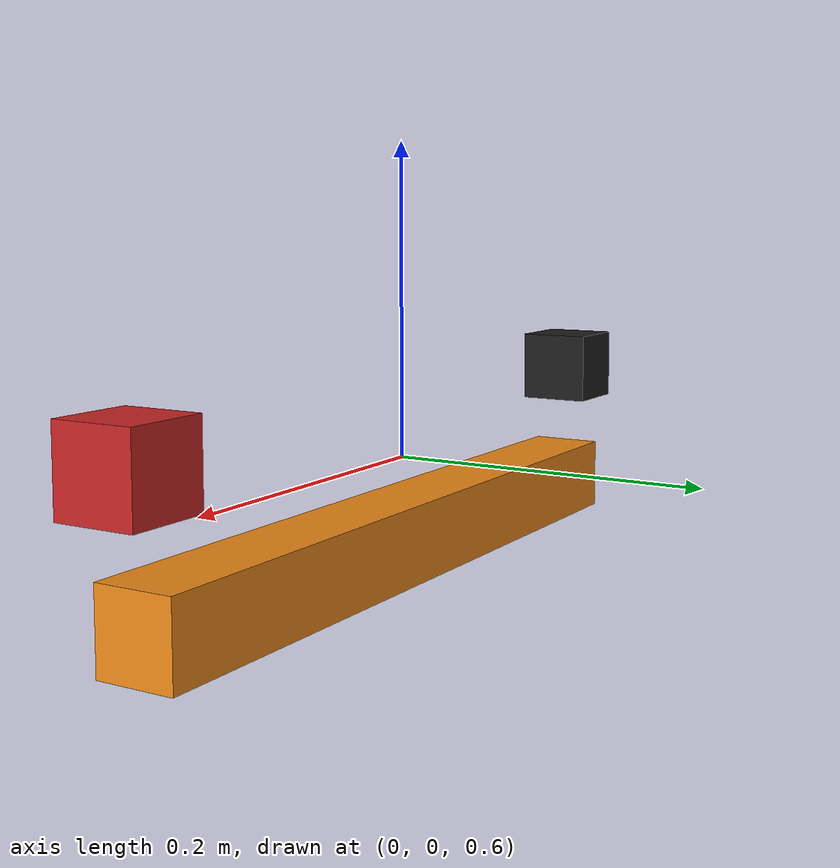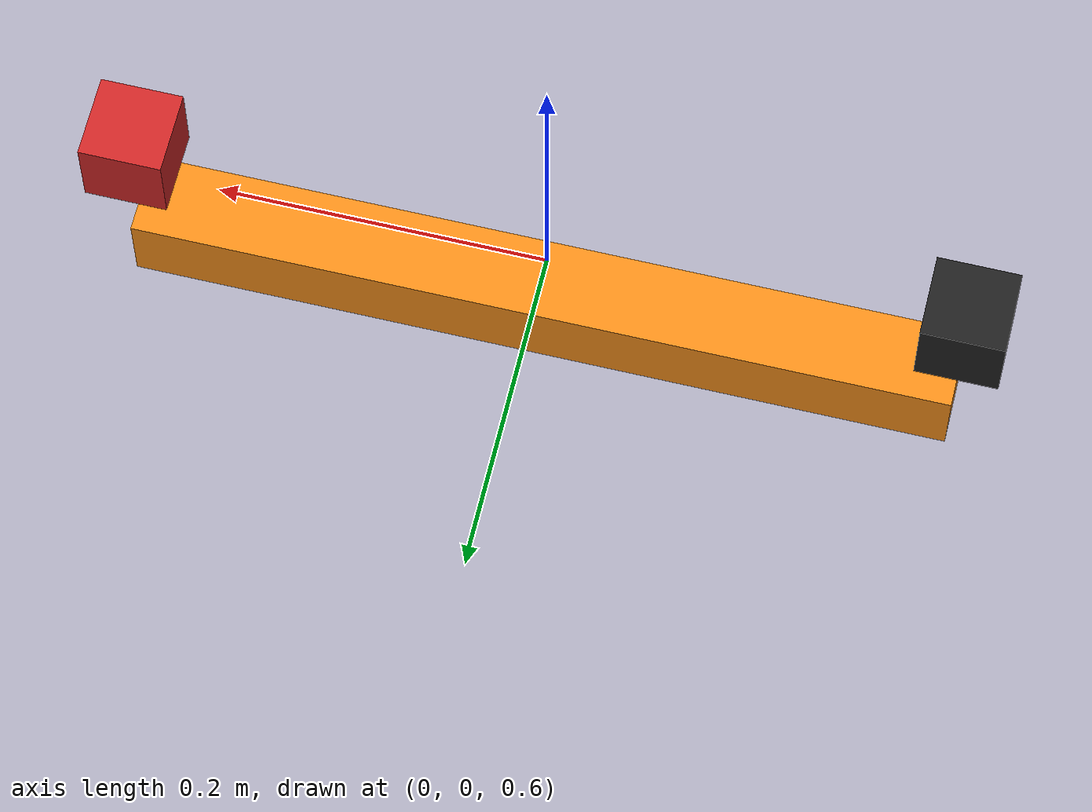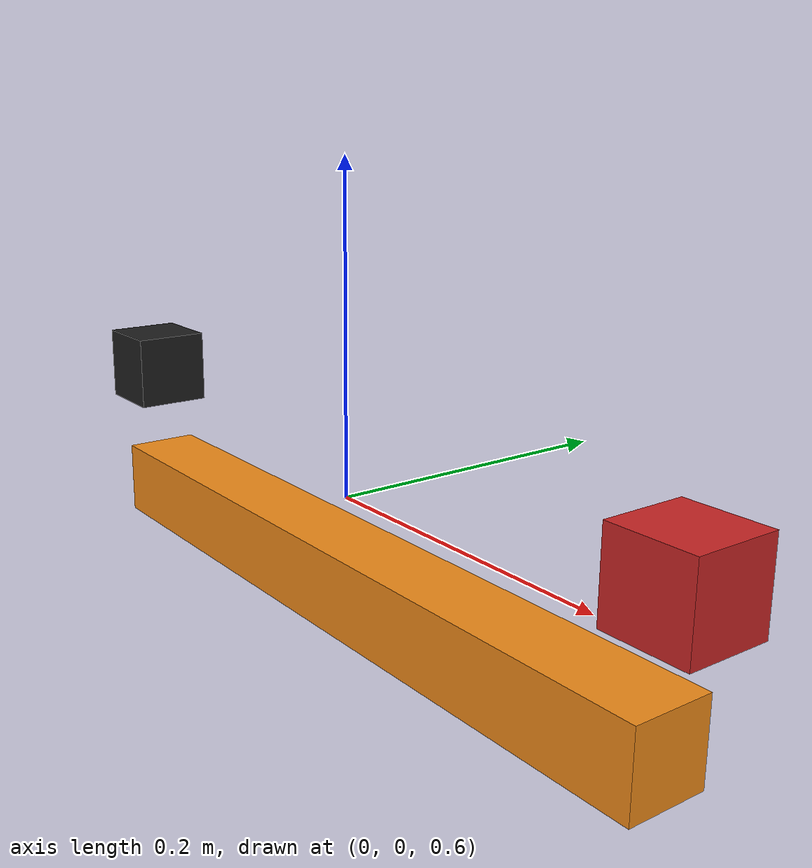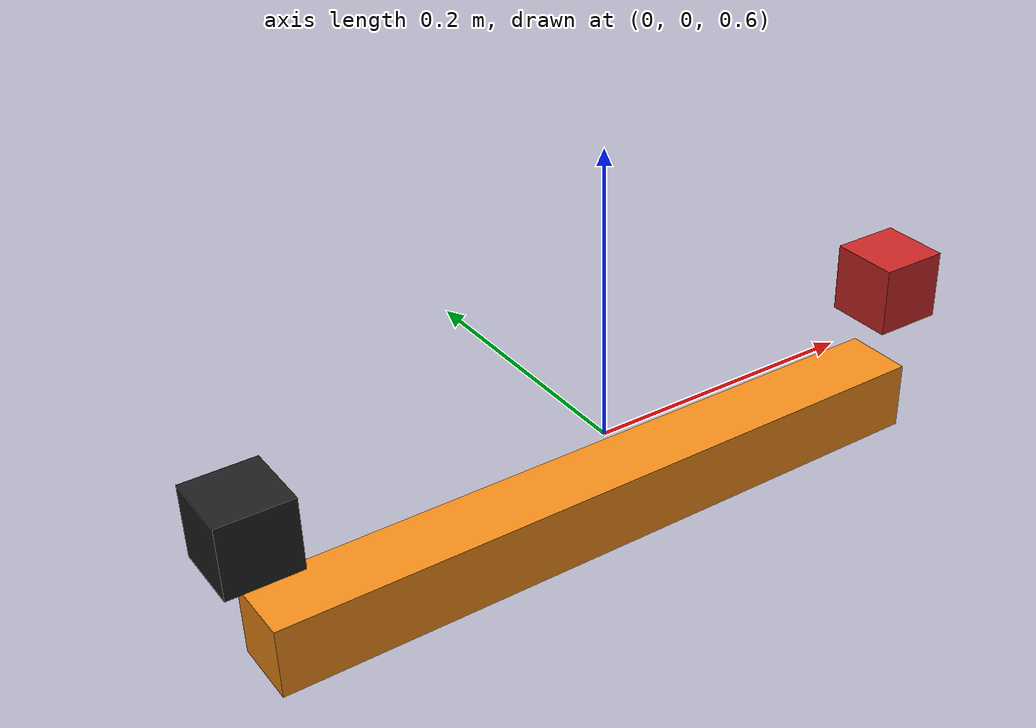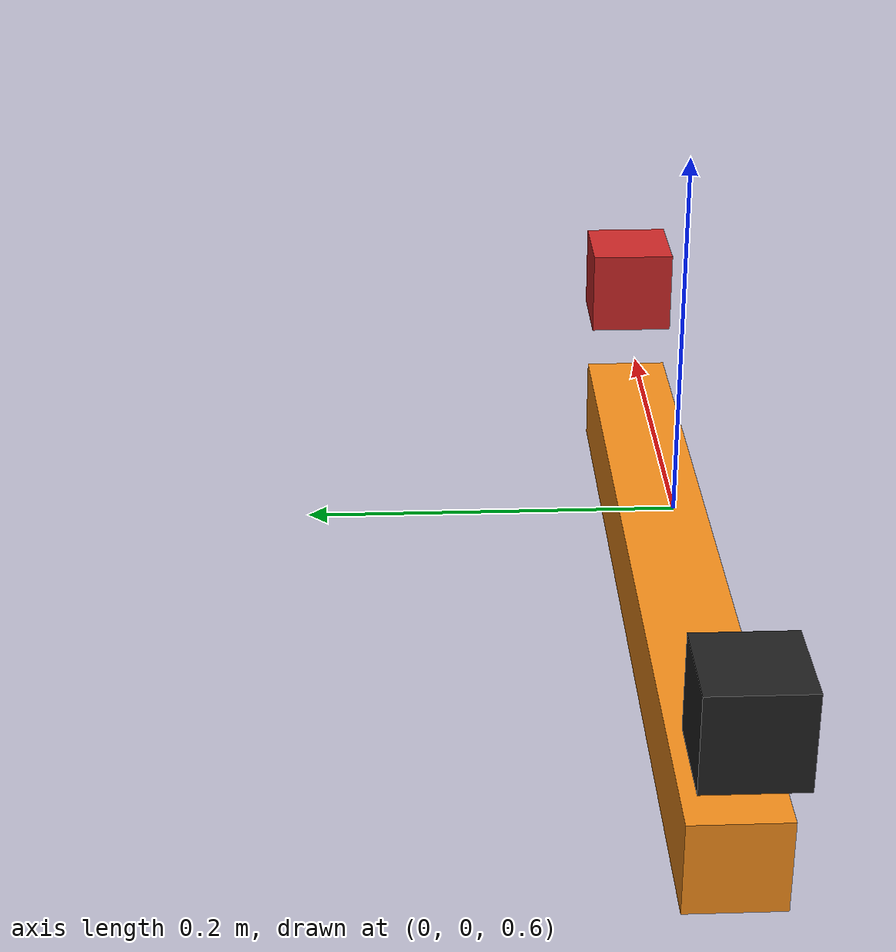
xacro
<?xml version="1.0"?>
<robot name="robo" xmlns:xacro="http://www.ros.org/wiki/xacro">

  <xacro:include filename="$(find test_gazebo_camera)/urdf/robo.gazebo"/>
  <xacro:include filename="$(find test_gazebo_camera)/urdf/materials.xacro" />
  <link name="world"/>
  <joint name="wjoint" type="continuous">
    <origin xyz ="0 0 0.5" rpy="0 0 0"/>
    <parent link ="world"/>
    <child link = "camera_link"/>
    <axis xyz = "0 1 0"/>
  </joint>

  <link name="camera_link">
    <collision>
      <origin xyz = "0 0 0.05" rpy="0 0 0"/>
      <geometry>
        <box size = "0.5 0.05 0.05"/>
      </geometry>
    </collision>

    <visual>
      <origin xyz="0 0 0.05" rpy="0 0 0"/>
      <geometry>
        <box size = "0.5 0.05 0.05"/>
      </geometry>
      <material name="orange"/>
    </visual>

    <inertial>
      <mass value = "0.001"/>
      <origin xyz = "0 0 0.05" rpy="0 0 0"/>
      <inertia ixx="0.0001" ixy = "0" ixz = "0" iyy= "0.0001" iyz="0" izz="0.0001"/>
    </inertial>

  </link>

  <joint name="camera_joint1" type="fixed">
    <parent link="camera_link"/>
    <child link="camera_base1"/>
    <origin xyz ="-0.25 0 0.11" rpy="0 0 1.57"/>
  </joint>

  <link name="camera_base1">
    <collision>
      <origin xyz = "0 0 0.025" rpy="0 0 0"/>
      <geometry>
        <box size = "0.05 0.05 0.05"/>
      </geometry>
    </collision>

    <visual>
      <origin xyz="0 0 0.025" rpy="0 0 0"/>
      <geometry>
        <box size = "0.05 0.05 0.05"/>
      </geometry>
      <material name="black"/>
    </visual>

    <inertial>
      <mass value = "0.001"/>
      <origin xyz = "0 0 0.025" rpy="0 0 0"/>
      <inertia ixx="0.0001" ixy = "0" ixz = "0" iyy= "0.0001" iyz="0" izz="0.0001"/>
    </inertial>

  </link>

  <joint name="camera_joint2" type="fixed">
    <parent link="camera_link"/>
    <child link="camera_base2"/>
    <origin xyz ="0.25 0 0.11" rpy="0 0 1.57"/>
  </joint>

  <link name="camera_base2">
    <collision>
      <origin xyz = "0 0 0.025" rpy="0 0 0"/>
      <geometry>
        <box size = "0.05 0.05 0.05"/>
      </geometry>
    </collision>

    <visual>
      <origin xyz="0 0 0.025" rpy="0 0 0"/>
      <geometry>
        <box size = "0.05 0.05 0.05"/>
      </geometry>
      <material name="red"/>
    </visual>

    <inertial>
      <mass value = "0.001"/>
      <origin xyz = "0 0 0.025" rpy="0 0 0"/>
      <inertia ixx="0.0001" ixy = "0" ixz = "0" iyy= "0.0001" iyz="0" izz="0.0001"/>
    </inertial>

  </link>

  <transmission name="tran1">
    <type>transmission_interface/SimpleTransmission</type>
    <joint name="wjoint">
      <hardwareInterface>hardware_interface/EffortJointInterface</hardwareInterface>
    </joint>
    <actuator name="motor1">
    <hardwareInterface>hardware_interface/EffortJointInterface</hardwareInterface>
    <mechanicalReduction>1</mechanicalReduction>
    </actuator>
  </transmission>

</robot>
